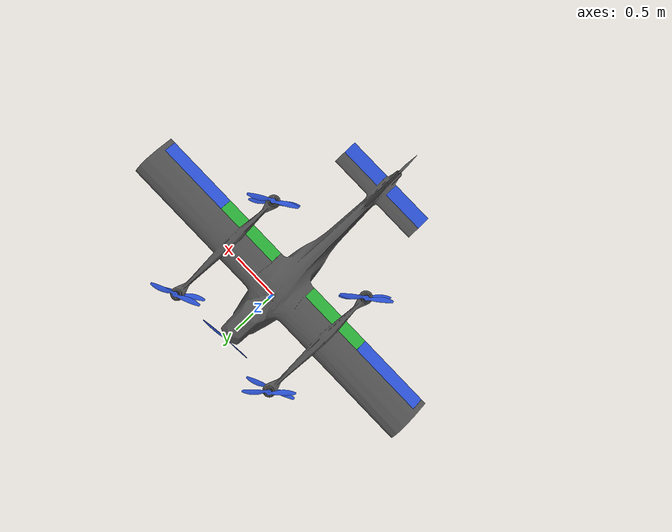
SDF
<?xml version="1.0"?>
<sdf version='1.6'>
  <model name='airmedic'>
    <link name='base_link'>
      <inertial>
        <pose>0 0 0 0 0 0</pose>
        <mass>28.103</mass>
        <inertia>
          <ixx>4.83869</ixx>
          <ixy>8.9699e-05</ixy>
          <ixz>0.000374192</ixz>
          <iyy>10.1119</iyy>
          <iyz>0.0988308</iyz>
          <izz>13.8095</izz>
        </inertia>
      </inertial>
      <collision name='base_link_collision'>
        <pose>0 0 0 0 -0 0</pose>
        <geometry>
          <mesh>
            <scale>1 1 1</scale>
            <uri>model://airmedic/meshes/base_link.dae</uri>
          </mesh>
        </geometry>
      </collision>
      <visual name='base_link_visual'>
        <pose>0 0 0 0 -0 0</pose>
        <geometry>
          <mesh>
            <scale>1 1 1</scale>
            <uri>model://airmedic/meshes/base_link.dae</uri>
          </mesh>
        </geometry>
        <material>
          <script>
            <name>Gazebo/DarkGrey</name>
            <uri>__default__</uri>
          </script>
        </material>
      </visual>
    </link>
    <link name='airmedic/imu_link'>
      <pose>0 0 0 0 0 0</pose>
      <inertial>
        <pose>0 0 0 0 0 0</pose>
        <mass>0.015</mass>
        <inertia>
          <ixx>1e-05</ixx>
          <ixy>0</ixy>
          <ixz>0</ixz>
          <iyy>1e-05</iyy>
          <iyz>0</iyz>
          <izz>1e-05</izz>
        </inertia>
      </inertial>
    </link>
    <joint name='airmedic/imu_joint' type='revolute'>
      <child>airmedic/imu_link</child>
      <parent>base_link</parent>
      <axis>
        <xyz>1 0 0</xyz>
        <limit>
          <lower>0</lower>
          <upper>0</upper>
          <effort>0</effort>
          <velocity>0</velocity>
        </limit>
        <dynamics>
          <spring_reference>0</spring_reference>
          <spring_stiffness>0</spring_stiffness>
        </dynamics>
        <use_parent_model_frame>1</use_parent_model_frame>
      </axis>
    </joint>
    <include>
      <uri>model://airspeed</uri>
      <pose>0 0 0 0 0 0</pose>
      <name>airspeed</name>
    </include>
    <include>
      <uri>model://gps</uri>
      <pose>0 0 0 0 0 0</pose>
      <name>gps</name>
    </include>
    <joint name='ZAK_lev' type='revolute'>
      <pose relative_to='base_link'>-0.23314 -0.23212 0.12214 0 -0 0</pose>
      <parent>base_link</parent>
      <child>Link_1</child>
      <axis>
        <xyz>1 0 0</xyz>
        <limit>
          <lower>0</lower>
          <upper>0.5236</upper>
          <effort>0</effort>
          <velocity>0</velocity>
        </limit>
        <dynamics>
          <spring_reference>0</spring_reference>
          <spring_stiffness>0</spring_stiffness>
        </dynamics>
      </axis>
    </joint>
    <link name='Link_1'>
      <pose relative_to='ZAK_lev'>0 0 0 0 -0 0</pose>
      <inertial>
        <pose>-0.35639 -0.029011 -0.003831 0 -0 0</pose>
        <mass>0.2</mass>
        <inertia>
          <ixx>0.015944</ixx>
          <ixy>-1.4384e-07</ixy>
          <ixz>-9.8916e-08</ixz>
          <iyy>0.65898</iyy>
          <iyz>-0.0017589</iyz>
          <izz>0.67239</izz>
        </inertia>
      </inertial>
      <collision name='Link_1_collision'>
        <pose>0 0 0 0 -0 0</pose>
        <geometry>
          <mesh>
            <scale>1 1 1</scale>
            <uri>model://airmedic/meshes/Link_1.dae</uri>
          </mesh>
        </geometry>
      </collision>
      <visual name='Link_1_visual'>
        <pose>0 0 0 0 -0 0</pose>
        <geometry>
          <mesh>
            <scale>1 1 1</scale>
            <uri>model://airmedic/meshes/Link_1.dae</uri>
          </mesh>
        </geometry>
        <material>
          <script>
            <name>Gazebo/Green</name>
            <uri>__default__</uri>
          </script>
        </material>
      </visual>
    </link>
    <joint name='ZAK_prav' type='revolute'>
      <pose relative_to='base_link'>0.23314 -0.23212 0.12214 0 -0 0</pose>
      <parent>base_link</parent>
      <child>Link_2</child>
      <axis>
        <xyz>1 0 0</xyz>
        <limit>
          <lower>0</lower>
          <upper>0.5236</upper>
          <effort>0</effort>
          <velocity>0</velocity>
        </limit>
        <dynamics>
          <spring_reference>0</spring_reference>
          <spring_stiffness>0</spring_stiffness>
        </dynamics>
      </axis>
    </joint>
    <link name='Link_2'>
      <pose relative_to='ZAK_prav'>0 0 0 0 -0 0</pose>
      <inertial>
        <pose>0.35639 -0.029011 -0.003831 0 -0 0</pose>
        <mass>0.2</mass>
        <inertia>
          <ixx>0.015944</ixx>
          <ixy>1.4426e-07</ixy>
          <ixz>9.9047e-08</ixz>
          <iyy>0.65898</iyy>
          <iyz>-0.0017589</iyz>
          <izz>0.67239</izz>
        </inertia>
      </inertial>
      <collision name='Link_2_collision'>
        <pose>0 0 0 0 -0 0</pose>
        <geometry>
          <mesh>
            <scale>1 1 1</scale>
            <uri>model://airmedic/meshes/Link_2.dae</uri>
          </mesh>
        </geometry>
      </collision>
      <visual name='Link_2_visual'>
        <pose>0 0 0 0 -0 0</pose>
        <geometry>
          <mesh>
            <scale>1 1 1</scale>
            <uri>model://airmedic/meshes/Link_2.dae</uri>
          </mesh>
        </geometry>
        <material>
          <script>
            <name>Gazebo/Green</name>
            <uri>__default__</uri>
          </script>
        </material>
      </visual>
    </link>
    <joint name='EL_lev' type='revolute'>
      <pose relative_to='base_link'>-0.936929 -0.232124 0.122136 0 -0 0</pose>
      <parent>base_link</parent>
      <child>Link_3</child>
      <axis>
        <xyz>1 0 0</xyz>
        <limit>
          <lower>-0.43633</lower>
          <upper>0.43633</upper>
          <effort>0</effort>
          <velocity>0</velocity>
        </limit>
        <dynamics>
          <spring_reference>0</spring_reference>
          <spring_stiffness>0</spring_stiffness>
        </dynamics>
      </axis>
    </joint>
    <link name='Link_3'>
      <pose relative_to='EL_lev'>0 0 0 0 -0 0</pose>
      <inertial>
        <pose>-0.40211 -0.029 -0.00383 0 -0 0</pose>
        <mass>0.2</mass>
        <inertia>
          <ixx>0.017547</ixx>
          <ixy>-1.8362e-11</ixy>
          <ixz>5.6041e-11</ixz>
          <iyy>0.8783</iyy>
          <iyz>-0.0019359</iyz>
          <izz>0.89306</izz>
        </inertia>
      </inertial>
      <collision name='Link_3_collision'>
        <pose>0 0 0 0 -0 0</pose>
        <geometry>
          <mesh>
            <scale>1 1 1</scale>
            <uri>model://airmedic/meshes/Link_3.dae</uri>
          </mesh>
        </geometry>
      </collision>
      <visual name='Link_3_visual'>
        <pose>0 0 0 0 -0 0</pose>
        <geometry>
          <mesh>
            <scale>1 1 1</scale>
            <uri>model://airmedic/meshes/Link_3.dae</uri>
          </mesh>
        </geometry>
        <material>
          <script>
            <name>Gazebo/Blue</name>
            <uri>__default__</uri>
          </script>
        </material>
      </visual>
    </link>
    <joint name='EL_prav' type='revolute'>
      <pose relative_to='base_link'>0.936929 -0.232124 0.122136 0 -0 0</pose>
      <parent>base_link</parent>
      <child>Link_4</child>
      <axis>
        <xyz>1 0 0</xyz>
        <limit>
          <lower>-0.43633</lower>
          <upper>0.43633</upper>
          <effort>0</effort>
          <velocity>0</velocity>
        </limit>
        <dynamics>
          <spring_reference>0</spring_reference>
          <spring_stiffness>0</spring_stiffness>
        </dynamics>
      </axis>
    </joint>
    <link name='Link_4'>
      <pose relative_to='EL_prav'>0 0 0 0 -0 0</pose>
      <inertial>
        <pose>0.40211 -0.029 -0.00383 0 -0 0</pose>
        <mass>0.2</mass>
        <inertia>
          <ixx>0.017547</ixx>
          <ixy>-1.2864e-11</ixy>
          <ixz>4.4513e-11</ixz>
          <iyy>0.8783</iyy>
          <iyz>-0.0019359</iyz>
          <izz>0.89306</izz>
        </inertia>
      </inertial>
      <collision name='Link_4_collision'>
        <pose>0 0 0 0 -0 0</pose>
        <geometry>
          <mesh>
            <scale>1 1 1</scale>
            <uri>model://airmedic/meshes/Link_4.dae</uri>
          </mesh>
        </geometry>
      </collision>
      <visual name='Link_4_visual'>
        <pose>0 0 0 0 -0 0</pose>
        <geometry>
          <mesh>
            <scale>1 1 1</scale>
            <uri>model://airmedic/meshes/Link_4.dae</uri>
          </mesh>
        </geometry>
        <material>
          <script>
            <name>Gazebo/Blue</name>
            <uri>__default__</uri>
          </script>
        </material>
      </visual>
    </link>
    <joint name='RN' type='revolute'>
      <pose relative_to='base_link'>0 -1.58357 0.280943 0 -0 0</pose>
      <parent>base_link</parent>
      <child>Link_7</child>
      <axis>
        <xyz>0 0.659668 -0.751557</xyz>
        <limit>
          <lower>-0.34907</lower>
          <upper>0.34907</upper>
          <effort>0</effort>
          <velocity>0</velocity>
        </limit>
        <dynamics>
          <spring_reference>0</spring_reference>
          <spring_stiffness>0</spring_stiffness>
        </dynamics>
      </axis>
    </joint>
    <link name='Link_7'>
      <pose relative_to='RN'>0 0 0 0 -0 0</pose>
      <inertial>
        <pose>0 -0.026924 -0.041927 0 -0 0</pose>
        <mass>0.18</mass>
        <inertia>
          <ixx>0.13173</ixx>
          <ixy>3.7072e-08</ixy>
          <ixz>-6.3187e-08</ixz>
          <iyy>0.069357</iyy>
          <iyz>0.05078</iyz>
          <izz>0.063353</izz>
        </inertia>
      </inertial>
      <collision name='Link_7_collision'>
        <pose>0 0 0 0 -0 0</pose>
        <geometry>
          <mesh>
            <scale>1 1 1</scale>
            <uri>model://airmedic/meshes/Link_7.dae</uri>
          </mesh>
        </geometry>
      </collision>
      <visual name='Link_7_visual'>
        <pose>0 0 0 0 -0 0</pose>
        <geometry>
          <mesh>
            <scale>1 1 1</scale>
            <uri>model://airmedic/meshes/Link_7.dae</uri>
          </mesh>
        </geometry>
        <material>
          <script>
            <name>Gazebo/Blue</name>
            <uri>__default__</uri>
          </script>
        </material>
      </visual>
    </link>
    <joint name='RV_lev' type='revolute'>
      <pose relative_to='base_link'>-0.0545 -1.49297 0.036984 0 -0 0</pose>
      <parent>base_link</parent>
      <child>Link_5</child>
      <axis>
        <xyz>1 0 0</xyz>
        <limit>
          <lower>-0.43633</lower>
          <upper>0.43633</upper>
          <effort>0</effort>
          <velocity>0</velocity>
        </limit>
        <dynamics>
          <spring_reference>0</spring_reference>
          <spring_stiffness>0</spring_stiffness>
        </dynamics>
      </axis>
    </joint>
    <link name='Link_5'>
      <pose relative_to='RV_lev'>0 0 0 0 -0 0</pose>
      <inertial>
        <pose>-0.23931 -0.042661 0.000745 0 -0 0</pose>
        <mass>0.16</mass>
        <inertia>
          <ixx>0.0094971</ixx>
          <ixy>-1.5388e-05</ixy>
          <ixz>2.8568e-07</ixz>
          <iyy>0.13067</iyy>
          <iyz>0.00015862</iyz>
          <izz>0.13975</izz>
        </inertia>
      </inertial>
      <collision name='Link_5_collision'>
        <pose>0 0 0 0 -0 0</pose>
        <geometry>
          <mesh>
            <scale>1 1 1</scale>
            <uri>model://airmedic/meshes/Link_5.dae</uri>
          </mesh>
        </geometry>
      </collision>
      <visual name='Link_5_visual'>
        <pose>0 0 0 0 -0 0</pose>
        <geometry>
          <mesh>
            <scale>1 1 1</scale>
            <uri>model://airmedic/meshes/Link_5.dae</uri>
          </mesh>
        </geometry>
        <material>
          <script>
            <name>Gazebo/Blue</name>
            <uri>__default__</uri>
          </script>
        </material>
      </visual>
    </link>
    <joint name='RV_prav' type='revolute'>
      <pose relative_to='base_link'>0.0545 -1.49297 0.036984 0 -0 0</pose>
      <parent>base_link</parent>
      <child>Link_6</child>
      <axis>
        <xyz>1 0 0</xyz>
        <limit>
          <lower>-0.43633</lower>
          <upper>0.43633</upper>
          <effort>0</effort>
          <velocity>0</velocity>
        </limit>
        <dynamics>
          <spring_reference>0</spring_reference>
          <spring_stiffness>0</spring_stiffness>
        </dynamics>
      </axis>
    </joint>
    <link name='Link_6'>
      <pose relative_to='RV_prav'>0 0 0 0 -0 0</pose>
      <inertial>
        <pose>0.23931 -0.042662 0.000745 0 -0 0</pose>
        <mass>0.16</mass>
        <inertia>
          <ixx>0.0094976</ixx>
          <ixy>1.4914e-05</ixy>
          <ixz>-3.1051e-07</ixz>
          <iyy>0.13067</iyy>
          <iyz>0.00015857</iyz>
          <izz>0.13975</izz>
        </inertia>
      </inertial>
      <collision name='Link_6_collision'>
        <pose>0 0 0 0 -0 0</pose>
        <geometry>
          <mesh>
            <scale>1 1 1</scale>
            <uri>model://airmedic/meshes/Link_6.dae</uri>
          </mesh>
        </geometry>
      </collision>
      <visual name='Link_6_visual'>
        <pose>0 0 0 0 -0 0</pose>
        <geometry>
          <mesh>
            <scale>1 1 1</scale>
            <uri>model://airmedic/meshes/Link_6.dae</uri>
          </mesh>
        </geometry>
        <material>
          <script>
            <name>Gazebo/Blue</name>
            <uri>__default__</uri>
          </script>
        </material>
      </visual>
    </link>
    <joint name='VV1' type='revolute'>
      <pose relative_to='base_link'>0.642857 0.643017 0.221242 0 -0 0</pose>
      <parent>base_link</parent>
      <child>Link_8</child>
      <axis>
        <xyz>0 0 1</xyz>
        <limit>
          <lower>-1e+16</lower>
          <upper>1e+16</upper>
        </limit>
        <dynamics>
          <spring_reference>0</spring_reference>
          <spring_stiffness>0</spring_stiffness>
        </dynamics>
      </axis>
    </joint>
    <link name='Link_8'>
      <pose relative_to='VV1'>0 0 0 0 -0 0</pose>
      <inertial>
        <pose>5e-06 8e-06 0.004466 0 -0 0</pose>
        <mass>0.061748</mass>
        <inertia>
          <ixx>0.00011244</ixx>
          <ixy>-0.00026531</ixy>
          <ixz>-4.0465e-10</ixz>
          <iyy>0.0006823</iyy>
          <iyz>-6.3818e-10</iyz>
          <izz>0.00079419</izz>
        </inertia>
      </inertial>
      <collision name='Link_8_collision'>
        <pose>0 0 0 0 -0 0</pose>
        <geometry>
          <mesh>
            <scale>1 1 1</scale>
            <uri>model://airmedic/meshes/Link_8.dae</uri>
          </mesh>
        </geometry>
      </collision>
      <visual name='Link_8_visual'>
        <pose>0 0 0 0 -0 0</pose>
        <geometry>
          <mesh>
            <scale>1 1 1</scale>
            <uri>model://airmedic/meshes/Link_8.dae</uri>
          </mesh>
        </geometry>
        <material>
          <script>
            <name>Gazebo/Blue</name>
            <uri>__default__</uri>
          </script>
        </material>
      </visual>
    </link>
    <joint name='VV2' type='revolute'>
      <pose relative_to='base_link'>-0.642857 0.643017 0.221242 0 -0 0</pose>
      <parent>base_link</parent>
      <child>Link_9</child>
      <axis>
        <xyz>0 0 1</xyz>
        <limit>
          <lower>-1e+16</lower>
          <upper>1e+16</upper>
        </limit>
        <dynamics>
          <spring_reference>0</spring_reference>
          <spring_stiffness>0</spring_stiffness>
        </dynamics>
      </axis>
    </joint>
    <link name='Link_9'>
      <pose relative_to='VV2'>0 0 0 0 -0 0</pose>
      <inertial>
        <pose>2e-06 1e-05 0.004466 0 -0 0</pose>
        <mass>0.061748</mass>
        <inertia>
          <ixx>0.00037381</ixx>
          <ixy>-0.0003886</ixy>
          <ixz>-1.8103e-10</ixz>
          <iyy>0.00042092</iyy>
          <iyz>-7.6594e-10</iyz>
          <izz>0.00079418</izz>
        </inertia>
      </inertial>
      <collision name='Link_9_collision'>
        <pose>0 0 0 0 -0 0</pose>
        <geometry>
          <mesh>
            <scale>1 1 1</scale>
            <uri>model://airmedic/meshes/Link_9.dae</uri>
          </mesh>
        </geometry>
      </collision>
      <visual name='Link_9_visual'>
        <pose>0 0 0 0 -0 0</pose>
        <geometry>
          <mesh>
            <scale>1 1 1</scale>
            <uri>model://airmedic/meshes/Link_9.dae</uri>
          </mesh>
        </geometry>
        <material>
          <script>
            <name>Gazebo/Blue</name>
            <uri>__default__</uri>
          </script>
        </material>
      </visual>
    </link>
    <joint name='VV3' type='revolute'>
      <pose relative_to='base_link'>-0.642857 -0.642697 0.221242 0 -0 0</pose>
      <parent>base_link</parent>
      <child>Link_10</child>
      <axis>
        <xyz>0 0 1</xyz>
        <limit>
          <lower>-1e+16</lower>
          <upper>1e+16</upper>
        </limit>
        <dynamics>
          <spring_reference>0</spring_reference>
          <spring_stiffness>0</spring_stiffness>
        </dynamics>
      </axis>
    </joint>
    <link name='Link_10'>
      <pose relative_to='VV3'>0 0 0 0 -0 0</pose>
      <inertial>
        <pose>3e-06 1e-05 0.004466 0 -0 0</pose>
        <mass>0.061748</mass>
        <inertia>
          <ixx>0.00030209</ixx>
          <ixy>-0.00037748</ixy>
          <ixz>-1.9958e-10</ixz>
          <iyy>0.00049264</iyy>
          <iyz>-7.2573e-10</iyz>
          <izz>0.00079418</izz>
        </inertia>
      </inertial>
      <collision name='Link_10_collision'>
        <pose>0 0 0 0 -0 0</pose>
        <geometry>
          <mesh>
            <scale>1 1 1</scale>
            <uri>model://airmedic/meshes/Link_10.dae</uri>
          </mesh>
        </geometry>
      </collision>
      <visual name='Link_10_visual'>
        <pose>0 0 0 0 -0 0</pose>
        <geometry>
          <mesh>
            <scale>1 1 1</scale>
            <uri>model://airmedic/meshes/Link_10.dae</uri>
          </mesh>
        </geometry>
        <material>
          <script>
            <name>Gazebo/Blue</name>
            <uri>__default__</uri>
          </script>
        </material>
      </visual>
    </link>
    <joint name='VV4' type='revolute'>
      <pose relative_to='base_link'>0.642857 -0.642697 0.221242 0 -0 0</pose>
      <parent>base_link</parent>
      <child>Link_11</child>
      <axis>
        <xyz>0 0 1</xyz>
        <limit>
          <lower>-1e+16</lower>
          <upper>1e+16</upper>
        </limit>
        <dynamics>
          <spring_reference>0</spring_reference>
          <spring_stiffness>0</spring_stiffness>
        </dynamics>
      </axis>
    </joint>
    <link name='Link_11'>
      <pose relative_to='VV4'>0 0 0 0 -0 0</pose>
      <inertial>
        <pose>4e-06 9e-06 0.004466 0 -0 0</pose>
        <mass>0.061748</mass>
        <inertia>
          <ixx>0.00020984</ixx>
          <ixy>-0.00034118</ixy>
          <ixz>-2.9725e-10</ixz>
          <iyy>0.00058491</iyy>
          <iyz>-6.9454e-10</iyz>
          <izz>0.00079419</izz>
        </inertia>
      </inertial>
      <collision name='Link_11_collision'>
        <pose>0 0 0 0 -0 0</pose>
        <geometry>
          <mesh>
            <scale>1 1 1</scale>
            <uri>model://airmedic/meshes/Link_11.dae</uri>
          </mesh>
        </geometry>
      </collision>
      <visual name='Link_11_visual'>
        <pose>0 0 0 0 -0 0</pose>
        <geometry>
          <mesh>
            <scale>1 1 1</scale>
            <uri>model://airmedic/meshes/Link_11.dae</uri>
          </mesh>
        </geometry>
        <material>
          <script>
            <name>Gazebo/Blue</name>
            <uri>__default__</uri>
          </script>
        </material>
      </visual>
    </link>
    <joint name='VV5' type='revolute'>
      <pose relative_to='base_link'>-0.642857 0.643017 0.055422 0 -0 0</pose>
      <parent>base_link</parent>
      <child>Link_12</child>
      <axis>
        <xyz>0 0 1</xyz>
        <limit>
          <lower>-1e+16</lower>
          <upper>1e+16</upper>
        </limit>
        <dynamics>
          <spring_reference>0</spring_reference>
          <spring_stiffness>0</spring_stiffness>
        </dynamics>
      </axis>
    </joint>
    <link name='Link_12'>
      <pose relative_to='VV5'>0 0 0 0 -0 0</pose>
      <inertial>
        <pose>5e-06 9e-06 0.004466 0 -0 0</pose>
        <mass>0.061748</mass>
        <inertia>
          <ixx>0.00011244</ixx>
          <ixy>-0.0002653</ixy>
          <ixz>-3.3525e-10</ixz>
          <iyy>0.0006823</iyy>
          <iyz>-6.0502e-10</iyz>
          <izz>0.00079419</izz>
        </inertia>
      </inertial>
      <collision name='Link_12_collision'>
        <pose>0 0 0 0 -0 0</pose>
        <geometry>
          <mesh>
            <scale>1 1 1</scale>
            <uri>model://airmedic/meshes/Link_12.dae</uri>
          </mesh>
        </geometry>
      </collision>
      <visual name='Link_12_visual'>
        <pose>0 0 0 0 -0 0</pose>
        <geometry>
          <mesh>
            <scale>1 1 1</scale>
            <uri>model://airmedic/meshes/Link_12.dae</uri>
          </mesh>
        </geometry>
        <material>
          <script>
            <name>Gazebo/Blue</name>
            <uri>__default__</uri>
          </script>
        </material>
      </visual>
    </link>
    <joint name='VV6' type='revolute'>
      <pose relative_to='base_link'>0.642857 0.643017 0.055422 0 -0 0</pose>
      <parent>base_link</parent>
      <child>Link_13</child>
      <axis>
        <xyz>0 0 1</xyz>
        <limit>
          <lower>-1e+16</lower>
          <upper>1e+16</upper>
        </limit>
        <dynamics>
          <spring_reference>0</spring_reference>
          <spring_stiffness>0</spring_stiffness>
        </dynamics>
      </axis>
    </joint>
    <link name='Link_13'>
      <pose relative_to='VV6'>0 0 0 0 -0 0</pose>
      <inertial>
        <pose>3e-06 9e-06 0.004466 0 -0 0</pose>
        <mass>0.061748</mass>
        <inertia>
          <ixx>0.00020984</ixx>
          <ixy>-0.00034118</ixy>
          <ixz>-3.0935e-10</ixz>
          <iyy>0.00058491</iyy>
          <iyz>-7.0159e-10</iyz>
          <izz>0.00079419</izz>
        </inertia>
      </inertial>
      <collision name='Link_13_collision'>
        <pose>0 0 0 0 -0 0</pose>
        <geometry>
          <mesh>
            <scale>1 1 1</scale>
            <uri>model://airmedic/meshes/Link_13.dae</uri>
          </mesh>
        </geometry>
      </collision>
      <visual name='Link_13_visual'>
        <pose>0 0 0 0 -0 0</pose>
        <geometry>
          <mesh>
            <scale>1 1 1</scale>
            <uri>model://airmedic/meshes/Link_13.dae</uri>
          </mesh>
        </geometry>
        <material>
          <script>
            <name>Gazebo/Blue</name>
            <uri>__default__</uri>
          </script>
        </material>
      </visual>
    </link>
    <joint name='VV7' type='revolute'>
      <pose relative_to='base_link'>0.642857 -0.642697 0.055422 0 -0 0</pose>
      <parent>base_link</parent>
      <child>Link_14</child>
      <axis>
        <xyz>0 0 1</xyz>
        <limit>
          <lower>-1e+16</lower>
          <upper>1e+16</upper>
        </limit>
        <dynamics>
          <spring_reference>0</spring_reference>
          <spring_stiffness>0</spring_stiffness>
        </dynamics>
      </axis>
    </joint>
    <link name='Link_14'>
      <pose relative_to='VV7'>0 0 0 0 -0 0</pose>
      <inertial>
        <pose>3e-06 1e-05 0.004466 0 -0 0</pose>
        <mass>0.061748</mass>
        <inertia>
          <ixx>0.00030209</ixx>
          <ixy>-0.00037748</ixy>
          <ixz>-2.0406e-10</ixz>
          <iyy>0.00049265</iyy>
          <iyz>-7.2925e-10</iyz>
          <izz>0.00079418</izz>
        </inertia>
      </inertial>
      <collision name='Link_14_collision'>
        <pose>0 0 0 0 -0 0</pose>
        <geometry>
          <mesh>
            <scale>1 1 1</scale>
            <uri>model://airmedic/meshes/Link_14.dae</uri>
          </mesh>
        </geometry>
      </collision>
      <visual name='Link_14_visual'>
        <pose>0 0 0 0 -0 0</pose>
        <geometry>
          <mesh>
            <scale>1 1 1</scale>
            <uri>model://airmedic/meshes/Link_14.dae</uri>
          </mesh>
        </geometry>
        <material>
          <script>
            <name>Gazebo/Blue</name>
            <uri>__default__</uri>
          </script>
        </material>
      </visual>
    </link>
    <joint name='VV8' type='revolute'>
      <pose relative_to='base_link'>-0.642857 -0.642697 0.055422 0 -0 0</pose>
      <parent>base_link</parent>
      <child>Link_15</child>
      <axis>
        <xyz>0 0 1</xyz>
        <limit>
          <lower>-1e+16</lower>
          <upper>1e+16</upper>
        </limit>
        <dynamics>
          <spring_reference>0</spring_reference>
          <spring_stiffness>0</spring_stiffness>
        </dynamics>
      </axis>
    </joint>
    <link name='Link_15'>
      <pose relative_to='VV8'>0 0 0 0 -0 0</pose>
      <inertial>
        <pose>2e-06 1e-05 0.004466 0 -0 0</pose>
        <mass>0.061748</mass>
        <inertia>
          <ixx>0.00037381</ixx>
          <ixy>-0.0003886</ixy>
          <ixz>-1.7479e-10</ixz>
          <iyy>0.00042092</iyy>
          <iyz>-7.5933e-10</iyz>
          <izz>0.00079418</izz>
        </inertia>
      </inertial>
      <collision name='Link_15_collision'>
        <pose>0 0 0 0 -0 0</pose>
        <geometry>
          <mesh>
            <scale>1 1 1</scale>
            <uri>model://airmedic/meshes/Link_15.dae</uri>
          </mesh>
        </geometry>
      </collision>
      <visual name='Link_15_visual'>
        <pose>0 0 0 0 -0 0</pose>
        <geometry>
          <mesh>
            <scale>1 1 1</scale>
            <uri>model://airmedic/meshes/Link_15.dae</uri>
          </mesh>
        </geometry>
        <material>
          <script>
            <name>Gazebo/Blue</name>
            <uri>__default__</uri>
          </script>
        </material>
      </visual>
    </link>
    <joint name='VV9' type='revolute'>
      <pose relative_to='base_link'>0 0.57124 0.27623 0 -0 0</pose>
      <parent>base_link</parent>
      <child>Link_16</child>
      <axis>
        <xyz>0 1 0</xyz>
        <limit>
          <lower>-1e+16</lower>
          <upper>1e+16</upper>
        </limit>
        <dynamics>
          <spring_reference>0</spring_reference>
          <spring_stiffness>0</spring_stiffness>
        </dynamics>
      </axis>
    </joint>
    <link name='Link_16'>
      <pose relative_to='VV9'>0 0 0 0 -0 0</pose>
      <inertial>
        <pose>-6e-06 0.005585 -1e-05 0 -0 0</pose>
        <mass>0.1</mass>
        <inertia>
          <ixx>0.0002112</ixx>
          <ixy>-6.2472e-10</ixy>
          <ixz>-0.00049833</ixz>
          <iyy>0.0014917</iyy>
          <iyz>-1.1375e-09</iyz>
          <izz>0.0012816</izz>
        </inertia>
      </inertial>
      <collision name='Link_16_collision'>
        <pose>0 0 0 0 -0 0</pose>
        <geometry>
          <mesh>
            <scale>1 1 1</scale>
            <uri>model://airmedic/meshes/Link_16.dae</uri>
          </mesh>
        </geometry>
      </collision>
      <visual name='Link_16_visual'>
        <pose>0 0 0 0 -0 0</pose>
        <geometry>
          <mesh>
            <scale>1 1 1</scale>
            <uri>model://airmedic/meshes/Link_16.dae</uri>
          </mesh>
        </geometry>
        <material>
          <script>
            <name>Gazebo/Blue</name>
            <uri>__default__</uri>
          </script>
        </material>
      </visual>
    </link>
    <joint name='gps_joint' type='fixed'>
      <child>gps::link</child>
      <parent>base_link</parent>
    </joint>
    <joint name='airspeed_joint' type='fixed'>
      <child>airspeed::link</child>
      <parent>base_link</parent>
    </joint>
    <plugin name="left_wing_lift" filename="libLiftDragPlugin.so">
      <a0>0.05984281113</a0>
      <cla>4.752798721</cla>
      <cda>0.6417112299</cda>
      <cma>0.0</cma>
      <alpha_stall>0.3391428111</alpha_stall>
      <cla_stall>-3.85</cla_stall>
      <cda_stall>-0.9233984055</cda_stall>
      <cma_stall>0</cma_stall>
      <cp>-0.05 0.3 0.05</cp>
      <area>0.50</area>
      <air_density>1.2041</air_density>
      <forward>1 0 0</forward>
      <upward>0 0 1</upward>
      <link_name>base_link</link_name>
      <control_joint_name>
        EL_lev
      </control_joint_name>
      <control_joint_rad_to_cl>-1.0</control_joint_rad_to_cl>
      <robotNamespace></robotNamespace>
      <windSubTopic>world_wind</windSubTopic>
    </plugin>
    <plugin name="right_wing_lift" filename="libLiftDragPlugin.so">
      <a0>0.05984281113</a0>
      <cla>4.752798721</cla>
      <cda>0.6417112299</cda>
      <cma>0.0</cma>
      <alpha_stall>0.3391428111</alpha_stall>
      <cla_stall>-3.85</cla_stall>
      <cda_stall>-0.9233984055</cda_stall>
      <cma_stall>0</cma_stall>
      <cp>-0.05 -0.3 0.05</cp>
      <area>0.50</area>
      <air_density>1.2041</air_density>
      <forward>1 0 0</forward>
      <upward>0 0 1</upward>
      <link_name>base_link</link_name>
      <control_joint_name>
        EL_prav
      </control_joint_name>
      <control_joint_rad_to_cl>-1.0</control_joint_rad_to_cl>
      <robotNamespace></robotNamespace>
      <windSubTopic>world_wind</windSubTopic>
    </plugin>
    <plugin name="left_flap" filename="libLiftDragPlugin.so">
      <a0>0.05984281113</a0>
      <cla>4.752798721</cla>
      <cda>0.6417112299</cda>
      <cma>0.0</cma>
      <alpha_stall>0.3391428111</alpha_stall>
      <cla_stall>-3.85</cla_stall>
      <cda_stall>-0.9233984055</cda_stall>
      <cma_stall>0</cma_stall>
      <cp>-0.05 0.15 0.05</cp>
      <area>0.6</area>
      <air_density>1.2041</air_density>
      <forward>1 0 0</forward>
      <upward>0 0 1</upward>
      <link_name>base_link</link_name>
      <control_joint_name>
        ZAK_lev
      </control_joint_name>
      <control_joint_rad_to_cl>-0.5</control_joint_rad_to_cl>
      <robotNamespace></robotNamespace>
      <windSubTopic>world_wind</windSubTopic>
    </plugin>
    <plugin name="right_flap" filename="libLiftDragPlugin.so">
      <a0>0.05984281113</a0>
      <cla>4.752798721</cla>
      <cda>0.6417112299</cda>
      <cma>0.0</cma>
      <alpha_stall>0.3391428111</alpha_stall>
      <cla_stall>-3.85</cla_stall>
      <cda_stall>-0.9233984055</cda_stall>
      <cma_stall>0</cma_stall>
      <cp>-0.05 -0.15 0.05</cp>
      <area>0.6</area>
      <air_density>1.2041</air_density>
      <forward>1 0 0</forward>
      <upward>0 0 1</upward>
      <link_name>base_link</link_name>
      <control_joint_name>
        ZAK_prav
      </control_joint_name>
      <control_joint_rad_to_cl>-0.5</control_joint_rad_to_cl>
      <robotNamespace></robotNamespace>
      <windSubTopic>world_wind</windSubTopic>
    </plugin>
    <plugin name="right_elevator" filename="libLiftDragPlugin.so">
      <a0>-0.2</a0>
      <cla>4.752798721</cla>
      <cda>0.6417112299</cda>
      <cma>0.0</cma>
      <alpha_stall>0.3391428111</alpha_stall>
      <cla_stall>-3.85</cla_stall>
      <cda_stall>-0.9233984055</cda_stall>
      <cma_stall>0</cma_stall>
      <cp>-0.5 0 0</cp>
      <area>0.01</area>
      <air_density>1.2041</air_density>
      <forward>1 0 0</forward>
      <upward>0 0 1</upward>
      <link_name>base_link</link_name>
      <control_joint_name>
        RV_lev
      </control_joint_name>
      <control_joint_rad_to_cl>-4.0</control_joint_rad_to_cl>
      <robotNamespace></robotNamespace>
      <windSubTopic>world_wind</windSubTopic>
    </plugin>
    <plugin name="left_elevator" filename="libLiftDragPlugin.so">
      <a0>-0.2</a0>
      <cla>4.752798721</cla>
      <cda>0.6417112299</cda>
      <cma>0.0</cma>
      <alpha_stall>0.3391428111</alpha_stall>
      <cla_stall>-3.85</cla_stall>
      <cda_stall>-0.9233984055</cda_stall>
      <cma_stall>0</cma_stall>
      <cp>-0.5 0 0</cp>
      <area>0.01</area>
      <air_density>1.2041</air_density>
      <forward>1 0 0</forward>
      <upward>0 0 1</upward>
      <link_name>base_link</link_name>
      <control_joint_name>
        RV_prav
      </control_joint_name>
      <control_joint_rad_to_cl>-4.0</control_joint_rad_to_cl>
      <robotNamespace></robotNamespace>
      <windSubTopic>world_wind</windSubTopic>
    </plugin>
    <plugin name="rudder" filename="libLiftDragPlugin.so">
      <a0>0.0</a0>
      <cla>4.752798721</cla>
      <cda>0.6417112299</cda>
      <cma>0.0</cma>
      <alpha_stall>0.3391428111</alpha_stall>
      <cla_stall>-3.85</cla_stall>
      <cda_stall>-0.9233984055</cda_stall>
      <cma_stall>0</cma_stall>
      <cp>-0.5 0 0.05</cp>
      <area>0.02</area>
      <air_density>1.2041</air_density>
      <forward>1 0 0</forward>
      <upward>0 1 0</upward>
      <link_name>base_link</link_name>
      <control_joint_name>
         RN
      </control_joint_name>
      <control_joint_rad_to_cl>4.0</control_joint_rad_to_cl>
      <robotNamespace></robotNamespace>
      <windSubTopic>world_wind</windSubTopic>
    </plugin>
    <plugin name='VV1' filename='libgazebo_motor_model.so'>
      <robotNamespace></robotNamespace>
      <jointName>VV1</jointName>
      <linkName>Link_8</linkName>
      <turningDirection>ccw</turningDirection>
      <timeConstantUp>0.0125</timeConstantUp>
      <timeConstantDown>0.0125</timeConstantDown>
      <maxRotVelocity>4500</maxRotVelocity>
      <motorConstant>2.429e-04</motorConstant>
      <momentConstant>0.098</momentConstant>
      <commandSubTopic>/gazebo/command/motor_speed</commandSubTopic>
      <motorNumber>1</motorNumber>
      <rotorDragCoefficient>5.35e-03</rotorDragCoefficient>
      <rollingMomentCoefficient>2.99e-03</rollingMomentCoefficient>
      <motorSpeedPubTopic>/motor_speed/1</motorSpeedPubTopic>
      <rotorVelocitySlowdownSim>20</rotorVelocitySlowdownSim>
    </plugin>
    <plugin name='VV2' filename='libgazebo_motor_model.so'>
      <robotNamespace></robotNamespace>
      <jointName>VV2</jointName>
      <linkName>Link_9</linkName>
      <turningDirection>cw</turningDirection>
      <timeConstantUp>0.0125</timeConstantUp>
      <timeConstantDown>0.0125</timeConstantDown>
      <maxRotVelocity>4500</maxRotVelocity>
      <motorConstant>2.429e-04</motorConstant>
      <momentConstant>0.098</momentConstant>
      <commandSubTopic>/gazebo/command/motor_speed</commandSubTopic>
      <motorNumber>2</motorNumber>
      <rotorDragCoefficient>5.35e-03</rotorDragCoefficient>
      <rollingMomentCoefficient>2.99e-03</rollingMomentCoefficient>
      <motorSpeedPubTopic>/motor_speed/2</motorSpeedPubTopic>
      <rotorVelocitySlowdownSim>20</rotorVelocitySlowdownSim>
    </plugin>
    <plugin name='VV3' filename='libgazebo_motor_model.so'>
      <robotNamespace></robotNamespace>
      <jointName>VV3</jointName>
      <linkName>Link_10</linkName>
      <turningDirection>ccw</turningDirection>
      <timeConstantUp>0.0125</timeConstantUp>
      <timeConstantDown>0.0125</timeConstantDown>
      <maxRotVelocity>4500</maxRotVelocity>
      <motorConstant>2.429e-04</motorConstant>
      <momentConstant>0.098</momentConstant>
      <commandSubTopic>/gazebo/command/motor_speed</commandSubTopic>
      <motorNumber>3</motorNumber>
      <rotorDragCoefficient>5.35e-03</rotorDragCoefficient>
      <rollingMomentCoefficient>2.99e-03</rollingMomentCoefficient>
      <motorSpeedPubTopic>/motor_speed/3</motorSpeedPubTopic>
      <rotorVelocitySlowdownSim>20</rotorVelocitySlowdownSim>
    </plugin>
    <plugin name='VV4' filename='libgazebo_motor_model.so'>
      <robotNamespace></robotNamespace>
      <jointName>VV4</jointName>
      <linkName>Link_11</linkName>
      <turningDirection>cw</turningDirection>
      <timeConstantUp>0.0125</timeConstantUp>
      <timeConstantDown>0.0125</timeConstantDown>
      <maxRotVelocity>4500</maxRotVelocity>
      <motorConstant>2.429e-04</motorConstant>
      <momentConstant>0.098</momentConstant>
      <commandSubTopic>/gazebo/command/motor_speed</commandSubTopic>
      <motorNumber>4</motorNumber>
      <rotorDragCoefficient>5.35e-03</rotorDragCoefficient>
      <rollingMomentCoefficient>2.99e-03</rollingMomentCoefficient>
      <motorSpeedPubTopic>/motor_speed/4</motorSpeedPubTopic>
      <rotorVelocitySlowdownSim>20</rotorVelocitySlowdownSim>
    </plugin>
    <plugin name='VV5' filename='libgazebo_motor_model.so'>
      <robotNamespace></robotNamespace>
      <jointName>VV5</jointName>
      <linkName>Link_12</linkName>
      <turningDirection>ccw</turningDirection>
      <timeConstantUp>0.0125</timeConstantUp>
      <timeConstantDown>0.0125</timeConstantDown>
      <maxRotVelocity>4500</maxRotVelocity>
      <motorConstant>2.429e-04</motorConstant>
      <momentConstant>0.098</momentConstant>
      <commandSubTopic>/gazebo/command/motor_speed</commandSubTopic>
      <motorNumber>5</motorNumber>
      <rotorDragCoefficient>5.35e-03</rotorDragCoefficient>
      <rollingMomentCoefficient>2.99e-03</rollingMomentCoefficient>
      <motorSpeedPubTopic>/motor_speed/5</motorSpeedPubTopic>
      <rotorVelocitySlowdownSim>20</rotorVelocitySlowdownSim>
    </plugin>
    <plugin name='VV6' filename='libgazebo_motor_model.so'>
      <robotNamespace></robotNamespace>
      <jointName>VV6</jointName>
      <linkName>Link_13</linkName>
      <turningDirection>cw</turningDirection>
      <timeConstantUp>0.0125</timeConstantUp>
      <timeConstantDown>0.0125</timeConstantDown>
      <maxRotVelocity>4500</maxRotVelocity>
      <motorConstant>2.429e-04</motorConstant>
      <momentConstant>0.098</momentConstant>
      <commandSubTopic>/gazebo/command/motor_speed</commandSubTopic>
      <motorNumber>6</motorNumber>
      <rotorDragCoefficient>5.35e-03</rotorDragCoefficient>
      <rollingMomentCoefficient>2.99e-03</rollingMomentCoefficient>
      <motorSpeedPubTopic>/motor_speed/6</motorSpeedPubTopic>
      <rotorVelocitySlowdownSim>20</rotorVelocitySlowdownSim>
    </plugin>
    <plugin name='VV7' filename='libgazebo_motor_model.so'>
      <robotNamespace></robotNamespace>
      <jointName>VV7</jointName>
      <linkName>Link_14</linkName>
      <turningDirection>ccw</turningDirection>
      <timeConstantUp>0.0125</timeConstantUp>
      <timeConstantDown>0.0125</timeConstantDown>
      <maxRotVelocity>4500</maxRotVelocity>
      <motorConstant>2.429e-04</motorConstant>
      <momentConstant>0.098</momentConstant>
      <commandSubTopic>/gazebo/command/motor_speed</commandSubTopic>
      <motorNumber>7</motorNumber>
      <rotorDragCoefficient>5.35e-03</rotorDragCoefficient>
      <rollingMomentCoefficient>2.99e-03</rollingMomentCoefficient>
      <motorSpeedPubTopic>/motor_speed/7</motorSpeedPubTopic>
      <rotorVelocitySlowdownSim>20</rotorVelocitySlowdownSim>
    </plugin>
    <plugin name='VV8' filename='libgazebo_motor_model.so'>
      <robotNamespace></robotNamespace>
      <jointName>VV8</jointName>
      <linkName>Link_15</linkName>
      <turningDirection>cw</turningDirection>
      <timeConstantUp>0.0125</timeConstantUp>
      <timeConstantDown>0.0125</timeConstantDown>
      <maxRotVelocity>4500</maxRotVelocity>
      <motorConstant>2.429e-04</motorConstant>
      <momentConstant>0.098</momentConstant>
      <commandSubTopic>/gazebo/command/motor_speed</commandSubTopic>
      <motorNumber>8</motorNumber>
      <rotorDragCoefficient>5.35e-03</rotorDragCoefficient>
      <rollingMomentCoefficient>2.99e-03</rollingMomentCoefficient>
      <motorSpeedPubTopic>/motor_speed/8</motorSpeedPubTopic>
      <rotorVelocitySlowdownSim>20</rotorVelocitySlowdownSim>
    </plugin>
    <plugin name='VV9' filename='libgazebo_motor_model.so'>
      <robotNamespace></robotNamespace>
      <jointName>VV9</jointName>
      <linkName>Link_16</linkName>
      <turningDirection>cw</turningDirection>
      <timeConstantUp>0.0125</timeConstantUp>
      <timeConstantDown>0.025</timeConstantDown>
      <maxRotVelocity>3500</maxRotVelocity>
      <motorConstant>8.54858e-06</motorConstant>
      <momentConstant>0.01</momentConstant>
      <commandSubTopic>/gazebo/command/motor_speed</commandSubTopic>
      <motorNumber>9</motorNumber>
      <rotorDragCoefficient>0.000106428</rotorDragCoefficient>
      <rollingMomentCoefficient>1e-06</rollingMomentCoefficient>
      <motorSpeedPubTopic>/motor_speed/9</motorSpeedPubTopic>
      <rotorVelocitySlowdownSim>20</rotorVelocitySlowdownSim>
    </plugin>
    <plugin name='gazebo_imu_plugin' filename='libgazebo_imu_plugin.so'>
      <robotNamespace></robotNamespace>
      <linkName>airmedic/imu_link</linkName>
      <imuTopic>/imu</imuTopic>
      <gyroscopeNoiseDensity>0.0003394</gyroscopeNoiseDensity>
      <gyroscopeRandomWalk>3.8785e-05</gyroscopeRandomWalk>
      <gyroscopeBiasCorrelationTime>1000.0</gyroscopeBiasCorrelationTime>
      <gyroscopeTurnOnBiasSigma>0.0087</gyroscopeTurnOnBiasSigma>
      <accelerometerNoiseDensity>0.004</accelerometerNoiseDensity>
      <accelerometerRandomWalk>0.001</accelerometerRandomWalk>
      <accelerometerBiasCorrelationTime>300.0</accelerometerBiasCorrelationTime>
      <accelerometerTurnOnBiasSigma>0.196</accelerometerTurnOnBiasSigma>
    </plugin>
    <plugin name='groundtruth_plugin' filename='libgazebo_groundtruth_plugin.so'>
      <robotNamespace/>
    </plugin>
    <plugin name='magnetometer_plugin' filename='libgazebo_magnetometer_plugin.so'>
      <robotNamespace/>
      <pubRate>100</pubRate>
      <noiseDensity>0.0004</noiseDensity>
      <randomWalk>6.4e-06</randomWalk>
      <biasCorrelationTime>600</biasCorrelationTime>
      <magTopic>/mag</magTopic>
    </plugin>
    <plugin name='barometer_plugin' filename='libgazebo_barometer_plugin.so'>
      <robotNamespace/>
      <pubRate>50</pubRate>
      <baroTopic>/baro</baroTopic>
    </plugin>
    <plugin name='mavlink_interface' filename='libgazebo_mavlink_interface.so'>
      <robotNamespace></robotNamespace>
      <imuSubTopic>/imu</imuSubTopic>
      <magSubTopic>/mag</magSubTopic>
      <baroSubTopic>/baro</baroSubTopic>
      <mavlink_addr>INADDR_ANY</mavlink_addr>
      <mavlink_tcp_port>4560</mavlink_tcp_port>
      <mavlink_udp_port>14560</mavlink_udp_port>
      <serialEnabled>0</serialEnabled>
      <serialDevice>/dev/ttyACM0</serialDevice>
      <baudRate>921600</baudRate>
      <qgc_addr>INADDR_ANY</qgc_addr>
      <qgc_udp_port>14550</qgc_udp_port>
      <sdk_addr>INADDR_ANY</sdk_addr>
      <sdk_udp_port>14540</sdk_udp_port>
      <hil_mode>0</hil_mode>
      <hil_state_level>false</hil_state_level>
      <enable_lockstep>true</enable_lockstep>
      <use_tcp>true</use_tcp>
      <motorSpeedCommandPubTopic>/gazebo/command/motor_speed</motorSpeedCommandPubTopic>
      <control_channels>
        <channel name="VV1">
          <input_index>0</input_index>
          <input_offset>0</input_offset>
          <input_scaling>4500</input_scaling>
          <zero_position_disarmed>0</zero_position_disarmed>
          <zero_position_armed>0</zero_position_armed>
          <joint_control_type>velocity</joint_control_type>
          <joint_name>VV1</joint_name>
        </channel>
        <channel name="VV2">
          <input_index>1</input_index>
          <input_offset>0</input_offset>
          <input_scaling>4500</input_scaling>
          <zero_position_disarmed>0</zero_position_disarmed>
          <zero_position_armed>0</zero_position_armed>
          <joint_control_type>velocity</joint_control_type>
          <joint_name>VV2</joint_name>
        </channel>
        <channel name="VV3">
          <input_index>2</input_index>
          <input_offset>0</input_offset>
          <input_scaling>4500</input_scaling>
          <zero_position_disarmed>0</zero_position_disarmed>
          <zero_position_armed>0</zero_position_armed>
          <joint_control_type>velocity</joint_control_type>
          <joint_name>VV3</joint_name>
        </channel>
        <channel name="VV4">
          <input_index>3</input_index>
          <input_offset>0</input_offset>
          <input_scaling>4500</input_scaling>
          <zero_position_disarmed>0</zero_position_disarmed>
          <zero_position_armed>0</zero_position_armed>
          <joint_control_type>velocity</joint_control_type>
          <joint_name>VV4</joint_name>
        </channel>
        <channel name="VV5">
          <input_index>4</input_index>
          <input_offset>0</input_offset>
          <input_scaling>4500</input_scaling>
          <zero_position_disarmed>0</zero_position_disarmed>
          <zero_position_armed>0</zero_position_armed>
          <joint_control_type>velocity</joint_control_type>
          <joint_name>VV5</joint_name>
        </channel>
        <channel name="VV6">
          <input_index>5</input_index>
          <input_offset>0</input_offset>
          <input_scaling>4500</input_scaling>
          <zero_position_disarmed>0</zero_position_disarmed>
          <zero_position_armed>0</zero_position_armed>
          <joint_control_type>velocity</joint_control_type>
          <joint_name>VV6</joint_name>
        </channel>
        <channel name="VV7">
          <input_index>6</input_index>
          <input_offset>0</input_offset>
          <input_scaling>4500</input_scaling>
          <zero_position_disarmed>0</zero_position_disarmed>
          <zero_position_armed>0</zero_position_armed>
          <joint_control_type>velocity</joint_control_type>
          <joint_name>VV7</joint_name>
        </channel>
        <channel name="VV8">
          <input_index>7</input_index>
          <input_offset>0</input_offset>
          <input_scaling>4500</input_scaling>
          <zero_position_disarmed>0</zero_position_disarmed>
          <zero_position_armed>0</zero_position_armed>
          <joint_control_type>velocity</joint_control_type>
          <joint_name>VV8</joint_name>
        </channel>
        <channel name="VV9">
          <input_index>8</input_index>
          <input_offset>0</input_offset>
          <input_scaling>3500</input_scaling>
          <zero_position_disarmed>0</zero_position_disarmed>
          <zero_position_armed>0</zero_position_armed>
          <joint_control_type>velocity</joint_control_type>
          <joint_name>VV9</joint_name>
        </channel>
        <channel name="EL_lev">
          <input_index>9</input_index>
          <input_offset>0</input_offset>
          <input_scaling>1</input_scaling>
          <zero_position_disarmed>0</zero_position_disarmed>
          <zero_position_armed>0</zero_position_armed>
          <joint_control_type>position_kinematic</joint_control_type>
          <joint_name>EL_lev</joint_name>
        </channel>
        <channel name="EL_prav">
          <input_index>10</input_index>
          <input_offset>0</input_offset>
          <input_scaling>1</input_scaling>
          <zero_position_disarmed>0</zero_position_disarmed>
          <zero_position_armed>0</zero_position_armed>
          <joint_control_type>position_kinematic</joint_control_type>
          <joint_name>EL_prav</joint_name>
        </channel>
        <channel name="RN">
          <input_index>11</input_index>
          <input_offset>0</input_offset>
          <input_scaling>1</input_scaling>
          <zero_position_disarmed>0</zero_position_disarmed>
          <zero_position_armed>0</zero_position_armed>
          <joint_control_type>position_kinematic</joint_control_type>
          <joint_name>RN</joint_name>
        </channel>
        <channel name="RV_lev">
          <input_index>12</input_index>
          <input_offset>0</input_offset>
          <input_scaling>1</input_scaling>
          <zero_position_disarmed>0</zero_position_disarmed>
          <zero_position_armed>0</zero_position_armed>
          <joint_control_type>position_kinematic</joint_control_type>
          <joint_name>RV_lev</joint_name>
        </channel>
        <channel name="RV_prav">
          <input_index>13</input_index>
          <input_offset>0</input_offset>
          <input_scaling>1</input_scaling>
          <zero_position_disarmed>0</zero_position_disarmed>
          <zero_position_armed>0</zero_position_armed>
          <joint_control_type>position_kinematic</joint_control_type>
          <joint_name>RV_prav</joint_name>
        </channel>
        <channel name="ZAK_lev">
          <input_index>14</input_index>
          <input_offset>0</input_offset>
          <input_scaling>1</input_scaling>
          <zero_position_disarmed>0</zero_position_disarmed>
          <zero_position_armed>0</zero_position_armed>
          <joint_control_type>position_kinematic</joint_control_type>
          <joint_name>ZAK_lev</joint_name>
        </channel>
        <channel name="ZAK_prav">
          <input_index>15</input_index>
          <input_offset>0</input_offset>
          <input_scaling>1</input_scaling>
          <zero_position_disarmed>0</zero_position_disarmed>
          <zero_position_armed>0</zero_position_armed>
          <joint_control_type>position_kinematic</joint_control_type>
          <joint_name>ZAK_prav</joint_name>
        </channel>
      </control_channels>
    </plugin>
  </model>
</sdf>

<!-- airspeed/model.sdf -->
<sdf version="1.6">
  <model name="airspeed">
    <link name="airspeed_link">
      <pose>0 0 0 0 0 0</pose>
      <inertial>
        <pose>0 0 0 0 0 0</pose>
        <mass>0.015</mass>
        <inertia>
          <ixx>1e-05</ixx>
          <ixy>0</ixy>
          <ixz>0</ixz>
          <iyy>1e-05</iyy>
          <iyz>0</iyz>
          <izz>1e-05</izz>
        </inertia>
      </inertial>
      <visual name="visual">
        <pose>0 0 0 0 1.57 0</pose>
        <geometry>
          <cylinder>
            <radius>0.004</radius>
            <length>0.08</length>
          </cylinder>
        </geometry> <!-- Black -->
        <material>
          <diffuse>0.0 0.0 0.0</diffuse>
          <specular>0.5 0.5 0.5</specular>
        </material>
      </visual>
      <sensor name="air_speed" type="air_speed">
        <pose>0 0 0 0 0 0</pose>
        <update_rate>5.0</update_rate>
        <always_on>1</always_on>
        <visualize>false</visualize>
      </sensor>
    </link>
  </model>
</sdf>

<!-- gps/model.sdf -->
<sdf version="1.6">
  <model name="gps">
    <link name="link">
      <pose>0 0 0 0 0 0</pose>
      <inertial>
        <pose>0 0 0 0 0 0</pose>
        <mass>0.015</mass>
        <inertia>
          <ixx>1e-05</ixx>
          <ixy>0</ixy>
          <ixz>0</ixz>
          <iyy>1e-05</iyy>
          <iyz>0</iyz>
          <izz>1e-05</izz>
        </inertia>
      </inertial>
      <visual name="visual">
        <geometry>
          <cylinder>
            <radius>0.01</radius>
            <length>0.002</length>
          </cylinder>
        </geometry>
        <material>
          <script>
            <name>Gazebo/Black</name>
            <uri>file://usr/share/gz/gz-sim8/media/gazebo.material</uri>
          </script>
        </material>
      </visual>
      <sensor name="gps" type="gps">
        <pose>0 0 0 0 0 0</pose>
        <update_rate>5.0</update_rate>
        <always_on>true</always_on>
        <visualize>false</visualize>
        <!-- GpsSensor noise currently not used -->
        <plugin name="gps_plugin" filename="libgazebo_gps_plugin.so">
          <robotNamespace></robotNamespace>
          <gpsNoise>true</gpsNoise>
          <gpsXYRandomWalk>2.0</gpsXYRandomWalk>
          <gpsZRandomWalk>4.0</gpsZRandomWalk>
          <gpsXYNoiseDensity>2.0e-4</gpsXYNoiseDensity>
          <gpsZNoiseDensity>4.0e-4</gpsZNoiseDensity>
          <gpsVXYNoiseDensity>0.2</gpsVXYNoiseDensity>
          <gpsVZNoiseDensity>0.4</gpsVZNoiseDensity>
        </plugin>
      </sensor>
    </link>
  </model>
</sdf>
